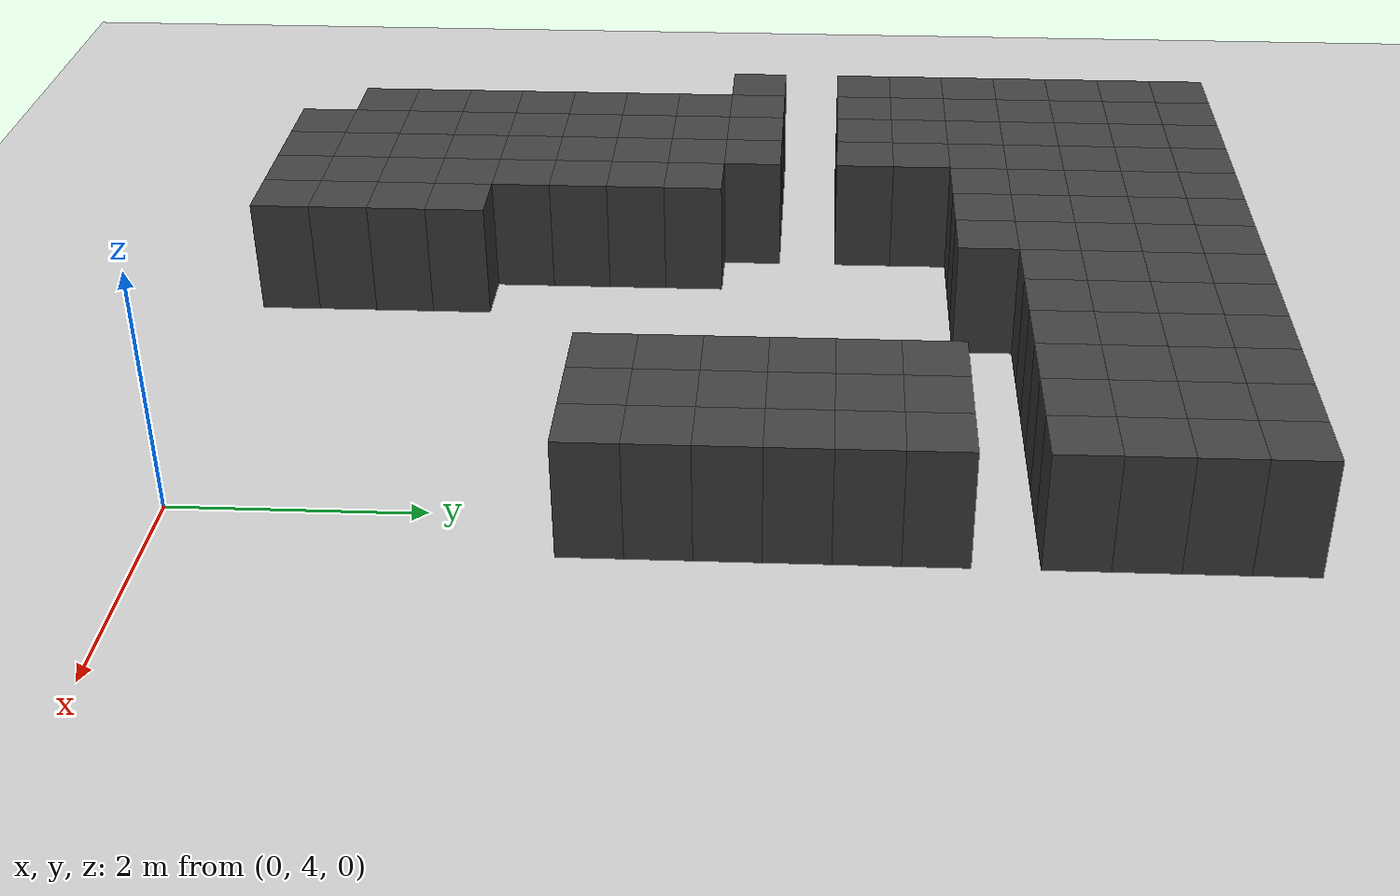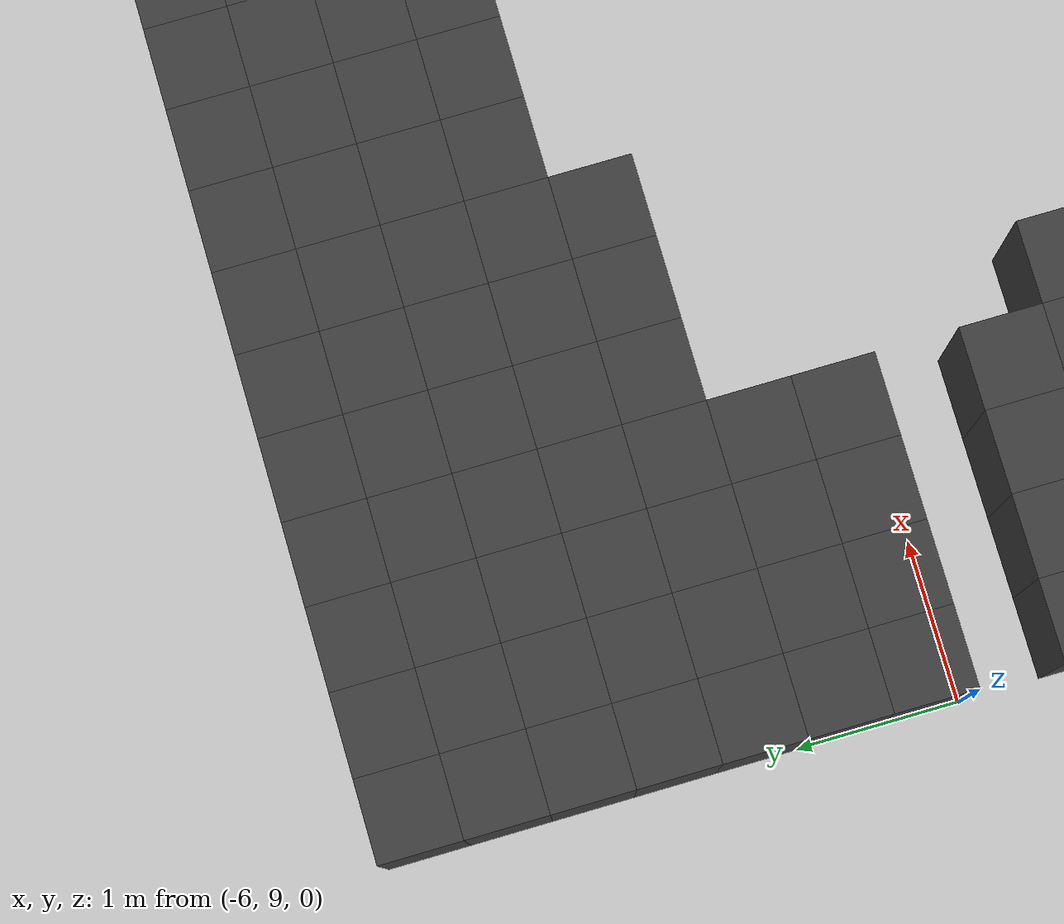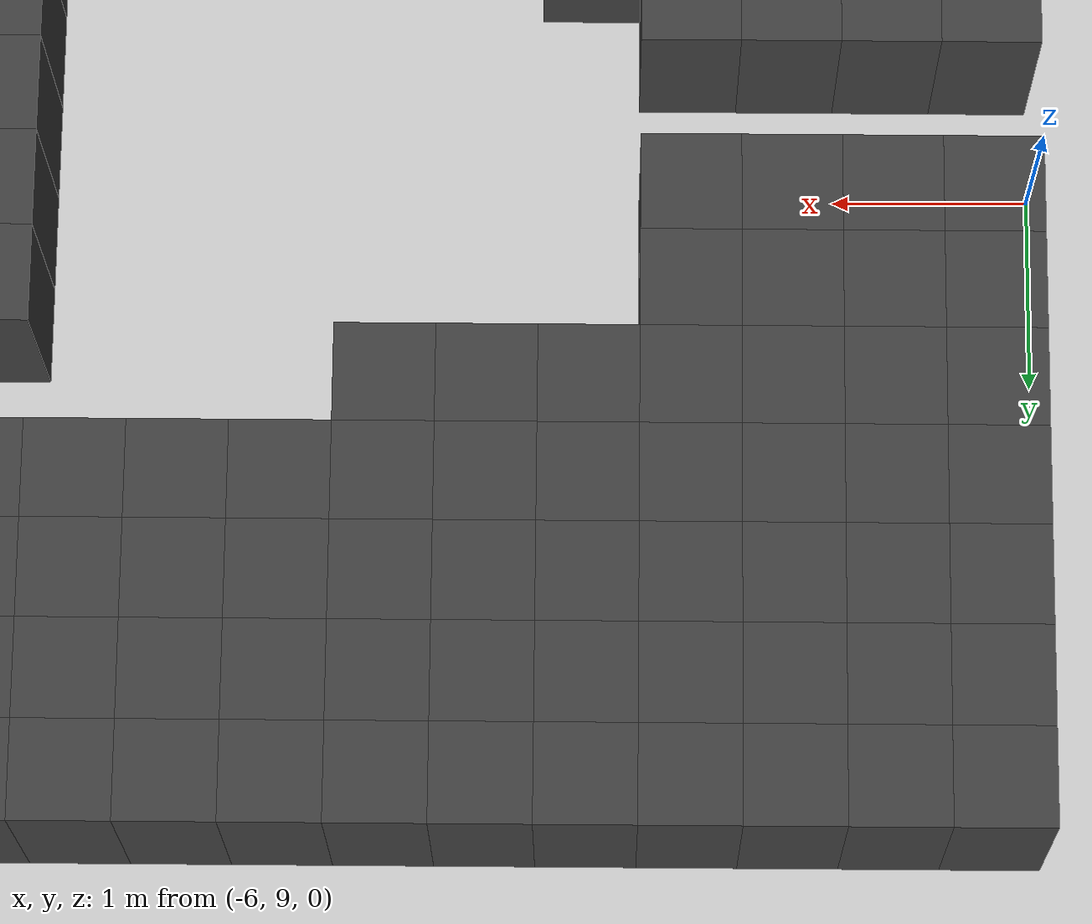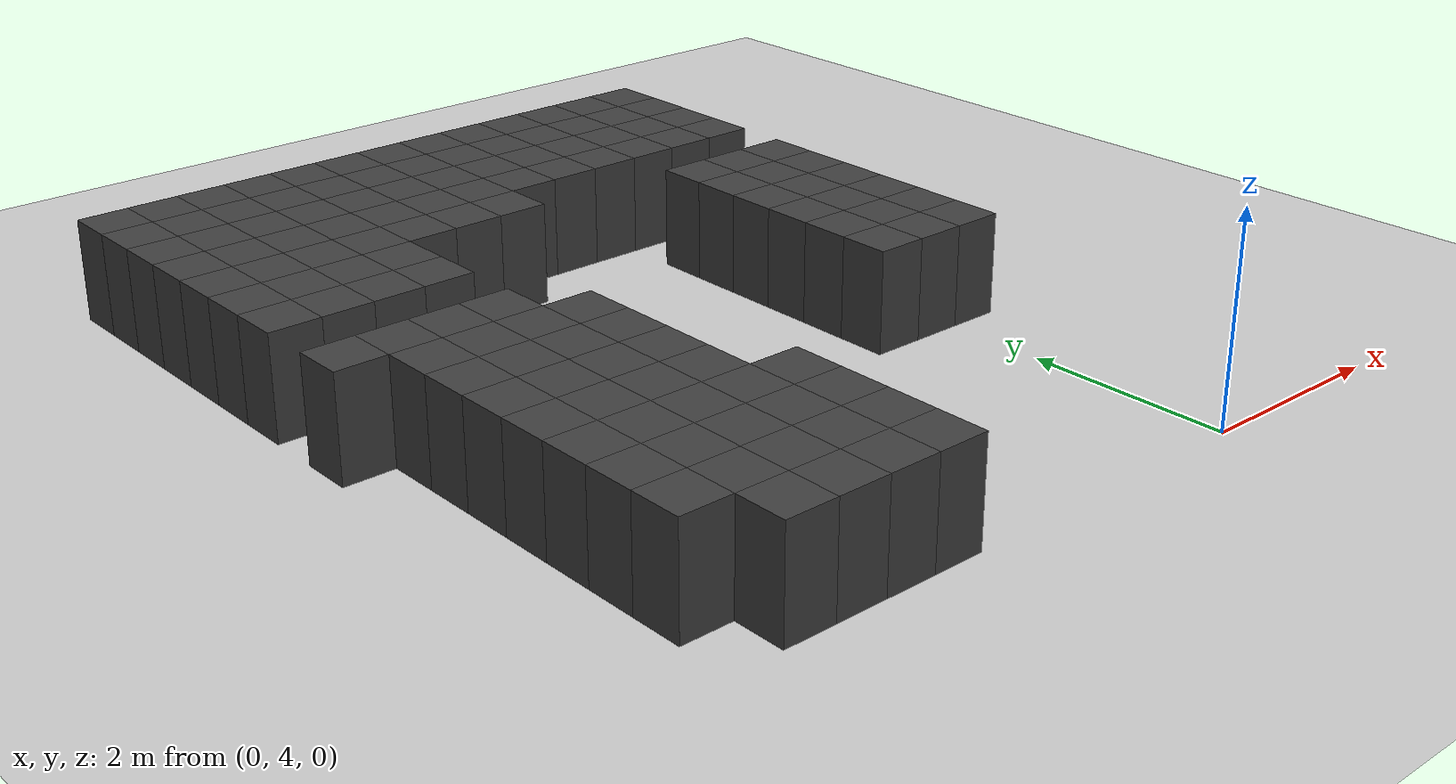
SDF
<sdf version="1.7">
 <world name="map_13820">
  <model name="ground_plane">
   <static>true</static>
   <link name="link">
    <collision name="collision">
     <geometry><plane><normal>0 0 1</normal><size>200 200</size></plane></geometry>
    </collision>
    <visual name="visual">
     <geometry><plane><normal>0 0 1</normal><size>200 200</size></plane></geometry>
     <material><ambient>0.8 0.8 0.8 1</ambient><diffuse>0.8 0.8 0.8 1</diffuse></material>
    </visual>
   </link>
  </model>
  <model name="maze_environment">
   <static>true</static>
   <link name="wall_13">
    <pose>-5.750 12.250 0.500 0 0 0</pose>
    <collision name="col"><geometry><box><size>0.5 0.5 1.0</size></box></geometry></collision>
    <visual name="vis">
     <geometry><box><size>0.5 0.5 1.0</size></box></geometry>
     <material><ambient>0.15 0.15 0.15 1</ambient><diffuse>0.25 0.25 0.25 1</diffuse></material>
    </visual>
   </link>
   <link name="wall_14">
    <pose>-5.250 12.250 0.500 0 0 0</pose>
    <collision name="col"><geometry><box><size>0.5 0.5 1.0</size></box></geometry></collision>
    <visual name="vis">
     <geometry><box><size>0.5 0.5 1.0</size></box></geometry>
     <material><ambient>0.15 0.15 0.15 1</ambient><diffuse>0.25 0.25 0.25 1</diffuse></material>
    </visual>
   </link>
   <link name="wall_15">
    <pose>-4.750 12.250 0.500 0 0 0</pose>
    <collision name="col"><geometry><box><size>0.5 0.5 1.0</size></box></geometry></collision>
    <visual name="vis">
     <geometry><box><size>0.5 0.5 1.0</size></box></geometry>
     <material><ambient>0.15 0.15 0.15 1</ambient><diffuse>0.25 0.25 0.25 1</diffuse></material>
    </visual>
   </link>
   <link name="wall_16">
    <pose>-4.250 12.250 0.500 0 0 0</pose>
    <collision name="col"><geometry><box><size>0.5 0.5 1.0</size></box></geometry></collision>
    <visual name="vis">
     <geometry><box><size>0.5 0.5 1.0</size></box></geometry>
     <material><ambient>0.15 0.15 0.15 1</ambient><diffuse>0.25 0.25 0.25 1</diffuse></material>
    </visual>
   </link>
   <link name="wall_17">
    <pose>-3.750 12.250 0.500 0 0 0</pose>
    <collision name="col"><geometry><box><size>0.5 0.5 1.0</size></box></geometry></collision>
    <visual name="vis">
     <geometry><box><size>0.5 0.5 1.0</size></box></geometry>
     <material><ambient>0.15 0.15 0.15 1</ambient><diffuse>0.25 0.25 0.25 1</diffuse></material>
    </visual>
   </link>
   <link name="wall_18">
    <pose>-3.250 12.250 0.500 0 0 0</pose>
    <collision name="col"><geometry><box><size>0.5 0.5 1.0</size></box></geometry></collision>
    <visual name="vis">
     <geometry><box><size>0.5 0.5 1.0</size></box></geometry>
     <material><ambient>0.15 0.15 0.15 1</ambient><diffuse>0.25 0.25 0.25 1</diffuse></material>
    </visual>
   </link>
   <link name="wall_19">
    <pose>-2.750 12.250 0.500 0 0 0</pose>
    <collision name="col"><geometry><box><size>0.5 0.5 1.0</size></box></geometry></collision>
    <visual name="vis">
     <geometry><box><size>0.5 0.5 1.0</size></box></geometry>
     <material><ambient>0.15 0.15 0.15 1</ambient><diffuse>0.25 0.25 0.25 1</diffuse></material>
    </visual>
   </link>
   <link name="wall_20">
    <pose>-2.250 12.250 0.500 0 0 0</pose>
    <collision name="col"><geometry><box><size>0.5 0.5 1.0</size></box></geometry></collision>
    <visual name="vis">
     <geometry><box><size>0.5 0.5 1.0</size></box></geometry>
     <material><ambient>0.15 0.15 0.15 1</ambient><diffuse>0.25 0.25 0.25 1</diffuse></material>
    </visual>
   </link>
   <link name="wall_21">
    <pose>-1.750 12.250 0.500 0 0 0</pose>
    <collision name="col"><geometry><box><size>0.5 0.5 1.0</size></box></geometry></collision>
    <visual name="vis">
     <geometry><box><size>0.5 0.5 1.0</size></box></geometry>
     <material><ambient>0.15 0.15 0.15 1</ambient><diffuse>0.25 0.25 0.25 1</diffuse></material>
    </visual>
   </link>
   <link name="wall_22">
    <pose>-1.250 12.250 0.500 0 0 0</pose>
    <collision name="col"><geometry><box><size>0.5 0.5 1.0</size></box></geometry></collision>
    <visual name="vis">
     <geometry><box><size>0.5 0.5 1.0</size></box></geometry>
     <material><ambient>0.15 0.15 0.15 1</ambient><diffuse>0.25 0.25 0.25 1</diffuse></material>
    </visual>
   </link>
   <link name="wall_23">
    <pose>-0.750 12.250 0.500 0 0 0</pose>
    <collision name="col"><geometry><box><size>0.5 0.5 1.0</size></box></geometry></collision>
    <visual name="vis">
     <geometry><box><size>0.5 0.5 1.0</size></box></geometry>
     <material><ambient>0.15 0.15 0.15 1</ambient><diffuse>0.25 0.25 0.25 1</diffuse></material>
    </visual>
   </link>
   <link name="wall_24">
    <pose>-0.250 12.250 0.500 0 0 0</pose>
    <collision name="col"><geometry><box><size>0.5 0.5 1.0</size></box></geometry></collision>
    <visual name="vis">
     <geometry><box><size>0.5 0.5 1.0</size></box></geometry>
     <material><ambient>0.15 0.15 0.15 1</ambient><diffuse>0.25 0.25 0.25 1</diffuse></material>
    </visual>
   </link>
   <link name="wall_25">
    <pose>0.250 12.250 0.500 0 0 0</pose>
    <collision name="col"><geometry><box><size>0.5 0.5 1.0</size></box></geometry></collision>
    <visual name="vis">
     <geometry><box><size>0.5 0.5 1.0</size></box></geometry>
     <material><ambient>0.15 0.15 0.15 1</ambient><diffuse>0.25 0.25 0.25 1</diffuse></material>
    </visual>
   </link>
   <link name="wall_60">
    <pose>-5.750 11.750 0.500 0 0 0</pose>
    <collision name="col"><geometry><box><size>0.5 0.5 1.0</size></box></geometry></collision>
    <visual name="vis">
     <geometry><box><size>0.5 0.5 1.0</size></box></geometry>
     <material><ambient>0.15 0.15 0.15 1</ambient><diffuse>0.25 0.25 0.25 1</diffuse></material>
    </visual>
   </link>
   <link name="wall_61">
    <pose>-5.250 11.750 0.500 0 0 0</pose>
    <collision name="col"><geometry><box><size>0.5 0.5 1.0</size></box></geometry></collision>
    <visual name="vis">
     <geometry><box><size>0.5 0.5 1.0</size></box></geometry>
     <material><ambient>0.15 0.15 0.15 1</ambient><diffuse>0.25 0.25 0.25 1</diffuse></material>
    </visual>
   </link>
   <link name="wall_62">
    <pose>-4.750 11.750 0.500 0 0 0</pose>
    <collision name="col"><geometry><box><size>0.5 0.5 1.0</size></box></geometry></collision>
    <visual name="vis">
     <geometry><box><size>0.5 0.5 1.0</size></box></geometry>
     <material><ambient>0.15 0.15 0.15 1</ambient><diffuse>0.25 0.25 0.25 1</diffuse></material>
    </visual>
   </link>
   <link name="wall_63">
    <pose>-4.250 11.750 0.500 0 0 0</pose>
    <collision name="col"><geometry><box><size>0.5 0.5 1.0</size></box></geometry></collision>
    <visual name="vis">
     <geometry><box><size>0.5 0.5 1.0</size></box></geometry>
     <material><ambient>0.15 0.15 0.15 1</ambient><diffuse>0.25 0.25 0.25 1</diffuse></material>
    </visual>
   </link>
   <link name="wall_64">
    <pose>-3.750 11.750 0.500 0 0 0</pose>
    <collision name="col"><geometry><box><size>0.5 0.5 1.0</size></box></geometry></collision>
    <visual name="vis">
     <geometry><box><size>0.5 0.5 1.0</size></box></geometry>
     <material><ambient>0.15 0.15 0.15 1</ambient><diffuse>0.25 0.25 0.25 1</diffuse></material>
    </visual>
   </link>
   <link name="wall_65">
    <pose>-3.250 11.750 0.500 0 0 0</pose>
    <collision name="col"><geometry><box><size>0.5 0.5 1.0</size></box></geometry></collision>
    <visual name="vis">
     <geometry><box><size>0.5 0.5 1.0</size></box></geometry>
     <material><ambient>0.15 0.15 0.15 1</ambient><diffuse>0.25 0.25 0.25 1</diffuse></material>
    </visual>
   </link>
   <link name="wall_66">
    <pose>-2.750 11.750 0.500 0 0 0</pose>
    <collision name="col"><geometry><box><size>0.5 0.5 1.0</size></box></geometry></collision>
    <visual name="vis">
     <geometry><box><size>0.5 0.5 1.0</size></box></geometry>
     <material><ambient>0.15 0.15 0.15 1</ambient><diffuse>0.25 0.25 0.25 1</diffuse></material>
    </visual>
   </link>
   <link name="wall_67">
    <pose>-2.250 11.750 0.500 0 0 0</pose>
    <collision name="col"><geometry><box><size>0.5 0.5 1.0</size></box></geometry></collision>
    <visual name="vis">
     <geometry><box><size>0.5 0.5 1.0</size></box></geometry>
     <material><ambient>0.15 0.15 0.15 1</ambient><diffuse>0.25 0.25 0.25 1</diffuse></material>
    </visual>
   </link>
   <link name="wall_68">
    <pose>-1.750 11.750 0.500 0 0 0</pose>
    <collision name="col"><geometry><box><size>0.5 0.5 1.0</size></box></geometry></collision>
    <visual name="vis">
     <geometry><box><size>0.5 0.5 1.0</size></box></geometry>
     <material><ambient>0.15 0.15 0.15 1</ambient><diffuse>0.25 0.25 0.25 1</diffuse></material>
    </visual>
   </link>
   <link name="wall_69">
    <pose>-1.250 11.750 0.500 0 0 0</pose>
    <collision name="col"><geometry><box><size>0.5 0.5 1.0</size></box></geometry></collision>
    <visual name="vis">
     <geometry><box><size>0.5 0.5 1.0</size></box></geometry>
     <material><ambient>0.15 0.15 0.15 1</ambient><diffuse>0.25 0.25 0.25 1</diffuse></material>
    </visual>
   </link>
   <link name="wall_70">
    <pose>-0.750 11.750 0.500 0 0 0</pose>
    <collision name="col"><geometry><box><size>0.5 0.5 1.0</size></box></geometry></collision>
    <visual name="vis">
     <geometry><box><size>0.5 0.5 1.0</size></box></geometry>
     <material><ambient>0.15 0.15 0.15 1</ambient><diffuse>0.25 0.25 0.25 1</diffuse></material>
    </visual>
   </link>
   <link name="wall_71">
    <pose>-0.250 11.750 0.500 0 0 0</pose>
    <collision name="col"><geometry><box><size>0.5 0.5 1.0</size></box></geometry></collision>
    <visual name="vis">
     <geometry><box><size>0.5 0.5 1.0</size></box></geometry>
     <material><ambient>0.15 0.15 0.15 1</ambient><diffuse>0.25 0.25 0.25 1</diffuse></material>
    </visual>
   </link>
   <link name="wall_72">
    <pose>0.250 11.750 0.500 0 0 0</pose>
    <collision name="col"><geometry><box><size>0.5 0.5 1.0</size></box></geometry></collision>
    <visual name="vis">
     <geometry><box><size>0.5 0.5 1.0</size></box></geometry>
     <material><ambient>0.15 0.15 0.15 1</ambient><diffuse>0.25 0.25 0.25 1</diffuse></material>
    </visual>
   </link>
   <link name="wall_101">
    <pose>-5.750 11.250 0.500 0 0 0</pose>
    <collision name="col"><geometry><box><size>0.5 0.5 1.0</size></box></geometry></collision>
    <visual name="vis">
     <geometry><box><size>0.5 0.5 1.0</size></box></geometry>
     <material><ambient>0.15 0.15 0.15 1</ambient><diffuse>0.25 0.25 0.25 1</diffuse></material>
    </visual>
   </link>
   <link name="wall_102">
    <pose>-5.250 11.250 0.500 0 0 0</pose>
    <collision name="col"><geometry><box><size>0.5 0.5 1.0</size></box></geometry></collision>
    <visual name="vis">
     <geometry><box><size>0.5 0.5 1.0</size></box></geometry>
     <material><ambient>0.15 0.15 0.15 1</ambient><diffuse>0.25 0.25 0.25 1</diffuse></material>
    </visual>
   </link>
   <link name="wall_103">
    <pose>-4.750 11.250 0.500 0 0 0</pose>
    <collision name="col"><geometry><box><size>0.5 0.5 1.0</size></box></geometry></collision>
    <visual name="vis">
     <geometry><box><size>0.5 0.5 1.0</size></box></geometry>
     <material><ambient>0.15 0.15 0.15 1</ambient><diffuse>0.25 0.25 0.25 1</diffuse></material>
    </visual>
   </link>
   <link name="wall_104">
    <pose>-4.250 11.250 0.500 0 0 0</pose>
    <collision name="col"><geometry><box><size>0.5 0.5 1.0</size></box></geometry></collision>
    <visual name="vis">
     <geometry><box><size>0.5 0.5 1.0</size></box></geometry>
     <material><ambient>0.15 0.15 0.15 1</ambient><diffuse>0.25 0.25 0.25 1</diffuse></material>
    </visual>
   </link>
   <link name="wall_105">
    <pose>-3.750 11.250 0.500 0 0 0</pose>
    <collision name="col"><geometry><box><size>0.5 0.5 1.0</size></box></geometry></collision>
    <visual name="vis">
     <geometry><box><size>0.5 0.5 1.0</size></box></geometry>
     <material><ambient>0.15 0.15 0.15 1</ambient><diffuse>0.25 0.25 0.25 1</diffuse></material>
    </visual>
   </link>
   <link name="wall_106">
    <pose>-3.250 11.250 0.500 0 0 0</pose>
    <collision name="col"><geometry><box><size>0.5 0.5 1.0</size></box></geometry></collision>
    <visual name="vis">
     <geometry><box><size>0.5 0.5 1.0</size></box></geometry>
     <material><ambient>0.15 0.15 0.15 1</ambient><diffuse>0.25 0.25 0.25 1</diffuse></material>
    </visual>
   </link>
   <link name="wall_107">
    <pose>-2.750 11.250 0.500 0 0 0</pose>
    <collision name="col"><geometry><box><size>0.5 0.5 1.0</size></box></geometry></collision>
    <visual name="vis">
     <geometry><box><size>0.5 0.5 1.0</size></box></geometry>
     <material><ambient>0.15 0.15 0.15 1</ambient><diffuse>0.25 0.25 0.25 1</diffuse></material>
    </visual>
   </link>
   <link name="wall_108">
    <pose>-2.250 11.250 0.500 0 0 0</pose>
    <collision name="col"><geometry><box><size>0.5 0.5 1.0</size></box></geometry></collision>
    <visual name="vis">
     <geometry><box><size>0.5 0.5 1.0</size></box></geometry>
     <material><ambient>0.15 0.15 0.15 1</ambient><diffuse>0.25 0.25 0.25 1</diffuse></material>
    </visual>
   </link>
   <link name="wall_109">
    <pose>-1.750 11.250 0.500 0 0 0</pose>
    <collision name="col"><geometry><box><size>0.5 0.5 1.0</size></box></geometry></collision>
    <visual name="vis">
     <geometry><box><size>0.5 0.5 1.0</size></box></geometry>
     <material><ambient>0.15 0.15 0.15 1</ambient><diffuse>0.25 0.25 0.25 1</diffuse></material>
    </visual>
   </link>
   <link name="wall_110">
    <pose>-1.250 11.250 0.500 0 0 0</pose>
    <collision name="col"><geometry><box><size>0.5 0.5 1.0</size></box></geometry></collision>
    <visual name="vis">
     <geometry><box><size>0.5 0.5 1.0</size></box></geometry>
     <material><ambient>0.15 0.15 0.15 1</ambient><diffuse>0.25 0.25 0.25 1</diffuse></material>
    </visual>
   </link>
   <link name="wall_111">
    <pose>-0.750 11.250 0.500 0 0 0</pose>
    <collision name="col"><geometry><box><size>0.5 0.5 1.0</size></box></geometry></collision>
    <visual name="vis">
     <geometry><box><size>0.5 0.5 1.0</size></box></geometry>
     <material><ambient>0.15 0.15 0.15 1</ambient><diffuse>0.25 0.25 0.25 1</diffuse></material>
    </visual>
   </link>
   <link name="wall_112">
    <pose>-0.250 11.250 0.500 0 0 0</pose>
    <collision name="col"><geometry><box><size>0.5 0.5 1.0</size></box></geometry></collision>
    <visual name="vis">
     <geometry><box><size>0.5 0.5 1.0</size></box></geometry>
     <material><ambient>0.15 0.15 0.15 1</ambient><diffuse>0.25 0.25 0.25 1</diffuse></material>
    </visual>
   </link>
   <link name="wall_113">
    <pose>0.250 11.250 0.500 0 0 0</pose>
    <collision name="col"><geometry><box><size>0.5 0.5 1.0</size></box></geometry></collision>
    <visual name="vis">
     <geometry><box><size>0.5 0.5 1.0</size></box></geometry>
     <material><ambient>0.15 0.15 0.15 1</ambient><diffuse>0.25 0.25 0.25 1</diffuse></material>
    </visual>
   </link>
   <link name="wall_128">
    <pose>-5.750 10.750 0.500 0 0 0</pose>
    <collision name="col"><geometry><box><size>0.5 0.5 1.0</size></box></geometry></collision>
    <visual name="vis">
     <geometry><box><size>0.5 0.5 1.0</size></box></geometry>
     <material><ambient>0.15 0.15 0.15 1</ambient><diffuse>0.25 0.25 0.25 1</diffuse></material>
    </visual>
   </link>
   <link name="wall_129">
    <pose>-5.250 10.750 0.500 0 0 0</pose>
    <collision name="col"><geometry><box><size>0.5 0.5 1.0</size></box></geometry></collision>
    <visual name="vis">
     <geometry><box><size>0.5 0.5 1.0</size></box></geometry>
     <material><ambient>0.15 0.15 0.15 1</ambient><diffuse>0.25 0.25 0.25 1</diffuse></material>
    </visual>
   </link>
   <link name="wall_130">
    <pose>-4.750 10.750 0.500 0 0 0</pose>
    <collision name="col"><geometry><box><size>0.5 0.5 1.0</size></box></geometry></collision>
    <visual name="vis">
     <geometry><box><size>0.5 0.5 1.0</size></box></geometry>
     <material><ambient>0.15 0.15 0.15 1</ambient><diffuse>0.25 0.25 0.25 1</diffuse></material>
    </visual>
   </link>
   <link name="wall_131">
    <pose>-4.250 10.750 0.500 0 0 0</pose>
    <collision name="col"><geometry><box><size>0.5 0.5 1.0</size></box></geometry></collision>
    <visual name="vis">
     <geometry><box><size>0.5 0.5 1.0</size></box></geometry>
     <material><ambient>0.15 0.15 0.15 1</ambient><diffuse>0.25 0.25 0.25 1</diffuse></material>
    </visual>
   </link>
   <link name="wall_132">
    <pose>-3.750 10.750 0.500 0 0 0</pose>
    <collision name="col"><geometry><box><size>0.5 0.5 1.0</size></box></geometry></collision>
    <visual name="vis">
     <geometry><box><size>0.5 0.5 1.0</size></box></geometry>
     <material><ambient>0.15 0.15 0.15 1</ambient><diffuse>0.25 0.25 0.25 1</diffuse></material>
    </visual>
   </link>
   <link name="wall_133">
    <pose>-3.250 10.750 0.500 0 0 0</pose>
    <collision name="col"><geometry><box><size>0.5 0.5 1.0</size></box></geometry></collision>
    <visual name="vis">
     <geometry><box><size>0.5 0.5 1.0</size></box></geometry>
     <material><ambient>0.15 0.15 0.15 1</ambient><diffuse>0.25 0.25 0.25 1</diffuse></material>
    </visual>
   </link>
   <link name="wall_134">
    <pose>-2.750 10.750 0.500 0 0 0</pose>
    <collision name="col"><geometry><box><size>0.5 0.5 1.0</size></box></geometry></collision>
    <visual name="vis">
     <geometry><box><size>0.5 0.5 1.0</size></box></geometry>
     <material><ambient>0.15 0.15 0.15 1</ambient><diffuse>0.25 0.25 0.25 1</diffuse></material>
    </visual>
   </link>
   <link name="wall_135">
    <pose>-2.250 10.750 0.500 0 0 0</pose>
    <collision name="col"><geometry><box><size>0.5 0.5 1.0</size></box></geometry></collision>
    <visual name="vis">
     <geometry><box><size>0.5 0.5 1.0</size></box></geometry>
     <material><ambient>0.15 0.15 0.15 1</ambient><diffuse>0.25 0.25 0.25 1</diffuse></material>
    </visual>
   </link>
   <link name="wall_136">
    <pose>-1.750 10.750 0.500 0 0 0</pose>
    <collision name="col"><geometry><box><size>0.5 0.5 1.0</size></box></geometry></collision>
    <visual name="vis">
     <geometry><box><size>0.5 0.5 1.0</size></box></geometry>
     <material><ambient>0.15 0.15 0.15 1</ambient><diffuse>0.25 0.25 0.25 1</diffuse></material>
    </visual>
   </link>
   <link name="wall_137">
    <pose>-1.250 10.750 0.500 0 0 0</pose>
    <collision name="col"><geometry><box><size>0.5 0.5 1.0</size></box></geometry></collision>
    <visual name="vis">
     <geometry><box><size>0.5 0.5 1.0</size></box></geometry>
     <material><ambient>0.15 0.15 0.15 1</ambient><diffuse>0.25 0.25 0.25 1</diffuse></material>
    </visual>
   </link>
   <link name="wall_138">
    <pose>-0.750 10.750 0.500 0 0 0</pose>
    <collision name="col"><geometry><box><size>0.5 0.5 1.0</size></box></geometry></collision>
    <visual name="vis">
     <geometry><box><size>0.5 0.5 1.0</size></box></geometry>
     <material><ambient>0.15 0.15 0.15 1</ambient><diffuse>0.25 0.25 0.25 1</diffuse></material>
    </visual>
   </link>
   <link name="wall_139">
    <pose>-0.250 10.750 0.500 0 0 0</pose>
    <collision name="col"><geometry><box><size>0.5 0.5 1.0</size></box></geometry></collision>
    <visual name="vis">
     <geometry><box><size>0.5 0.5 1.0</size></box></geometry>
     <material><ambient>0.15 0.15 0.15 1</ambient><diffuse>0.25 0.25 0.25 1</diffuse></material>
    </visual>
   </link>
   <link name="wall_140">
    <pose>0.250 10.750 0.500 0 0 0</pose>
    <collision name="col"><geometry><box><size>0.5 0.5 1.0</size></box></geometry></collision>
    <visual name="vis">
     <geometry><box><size>0.5 0.5 1.0</size></box></geometry>
     <material><ambient>0.15 0.15 0.15 1</ambient><diffuse>0.25 0.25 0.25 1</diffuse></material>
    </visual>
   </link>
   <link name="wall_156">
    <pose>-5.750 10.250 0.500 0 0 0</pose>
    <collision name="col"><geometry><box><size>0.5 0.5 1.0</size></box></geometry></collision>
    <visual name="vis">
     <geometry><box><size>0.5 0.5 1.0</size></box></geometry>
     <material><ambient>0.15 0.15 0.15 1</ambient><diffuse>0.25 0.25 0.25 1</diffuse></material>
    </visual>
   </link>
   <link name="wall_157">
    <pose>-5.250 10.250 0.500 0 0 0</pose>
    <collision name="col"><geometry><box><size>0.5 0.5 1.0</size></box></geometry></collision>
    <visual name="vis">
     <geometry><box><size>0.5 0.5 1.0</size></box></geometry>
     <material><ambient>0.15 0.15 0.15 1</ambient><diffuse>0.25 0.25 0.25 1</diffuse></material>
    </visual>
   </link>
   <link name="wall_158">
    <pose>-4.750 10.250 0.500 0 0 0</pose>
    <collision name="col"><geometry><box><size>0.5 0.5 1.0</size></box></geometry></collision>
    <visual name="vis">
     <geometry><box><size>0.5 0.5 1.0</size></box></geometry>
     <material><ambient>0.15 0.15 0.15 1</ambient><diffuse>0.25 0.25 0.25 1</diffuse></material>
    </visual>
   </link>
   <link name="wall_159">
    <pose>-4.250 10.250 0.500 0 0 0</pose>
    <collision name="col"><geometry><box><size>0.5 0.5 1.0</size></box></geometry></collision>
    <visual name="vis">
     <geometry><box><size>0.5 0.5 1.0</size></box></geometry>
     <material><ambient>0.15 0.15 0.15 1</ambient><diffuse>0.25 0.25 0.25 1</diffuse></material>
    </visual>
   </link>
   <link name="wall_160">
    <pose>-3.750 10.250 0.500 0 0 0</pose>
    <collision name="col"><geometry><box><size>0.5 0.5 1.0</size></box></geometry></collision>
    <visual name="vis">
     <geometry><box><size>0.5 0.5 1.0</size></box></geometry>
     <material><ambient>0.15 0.15 0.15 1</ambient><diffuse>0.25 0.25 0.25 1</diffuse></material>
    </visual>
   </link>
   <link name="wall_161">
    <pose>-3.250 10.250 0.500 0 0 0</pose>
    <collision name="col"><geometry><box><size>0.5 0.5 1.0</size></box></geometry></collision>
    <visual name="vis">
     <geometry><box><size>0.5 0.5 1.0</size></box></geometry>
     <material><ambient>0.15 0.15 0.15 1</ambient><diffuse>0.25 0.25 0.25 1</diffuse></material>
    </visual>
   </link>
   <link name="wall_162">
    <pose>-2.750 10.250 0.500 0 0 0</pose>
    <collision name="col"><geometry><box><size>0.5 0.5 1.0</size></box></geometry></collision>
    <visual name="vis">
     <geometry><box><size>0.5 0.5 1.0</size></box></geometry>
     <material><ambient>0.15 0.15 0.15 1</ambient><diffuse>0.25 0.25 0.25 1</diffuse></material>
    </visual>
   </link>
   <link name="wall_175">
    <pose>-5.750 9.750 0.500 0 0 0</pose>
    <collision name="col"><geometry><box><size>0.5 0.5 1.0</size></box></geometry></collision>
    <visual name="vis">
     <geometry><box><size>0.5 0.5 1.0</size></box></geometry>
     <material><ambient>0.15 0.15 0.15 1</ambient><diffuse>0.25 0.25 0.25 1</diffuse></material>
    </visual>
   </link>
   <link name="wall_176">
    <pose>-5.250 9.750 0.500 0 0 0</pose>
    <collision name="col"><geometry><box><size>0.5 0.5 1.0</size></box></geometry></collision>
    <visual name="vis">
     <geometry><box><size>0.5 0.5 1.0</size></box></geometry>
     <material><ambient>0.15 0.15 0.15 1</ambient><diffuse>0.25 0.25 0.25 1</diffuse></material>
    </visual>
   </link>
   <link name="wall_177">
    <pose>-4.750 9.750 0.500 0 0 0</pose>
    <collision name="col"><geometry><box><size>0.5 0.5 1.0</size></box></geometry></collision>
    <visual name="vis">
     <geometry><box><size>0.5 0.5 1.0</size></box></geometry>
     <material><ambient>0.15 0.15 0.15 1</ambient><diffuse>0.25 0.25 0.25 1</diffuse></material>
    </visual>
   </link>
   <link name="wall_178">
    <pose>-4.250 9.750 0.500 0 0 0</pose>
    <collision name="col"><geometry><box><size>0.5 0.5 1.0</size></box></geometry></collision>
    <visual name="vis">
     <geometry><box><size>0.5 0.5 1.0</size></box></geometry>
     <material><ambient>0.15 0.15 0.15 1</ambient><diffuse>0.25 0.25 0.25 1</diffuse></material>
    </visual>
   </link>
   <link name="wall_179">
    <pose>-0.750 9.750 0.500 0 0 0</pose>
    <collision name="col"><geometry><box><size>0.5 0.5 1.0</size></box></geometry></collision>
    <visual name="vis">
     <geometry><box><size>0.5 0.5 1.0</size></box></geometry>
     <material><ambient>0.15 0.15 0.15 1</ambient><diffuse>0.25 0.25 0.25 1</diffuse></material>
    </visual>
   </link>
   <link name="wall_180">
    <pose>-0.250 9.750 0.500 0 0 0</pose>
    <collision name="col"><geometry><box><size>0.5 0.5 1.0</size></box></geometry></collision>
    <visual name="vis">
     <geometry><box><size>0.5 0.5 1.0</size></box></geometry>
     <material><ambient>0.15 0.15 0.15 1</ambient><diffuse>0.25 0.25 0.25 1</diffuse></material>
    </visual>
   </link>
   <link name="wall_181">
    <pose>0.250 9.750 0.500 0 0 0</pose>
    <collision name="col"><geometry><box><size>0.5 0.5 1.0</size></box></geometry></collision>
    <visual name="vis">
     <geometry><box><size>0.5 0.5 1.0</size></box></geometry>
     <material><ambient>0.15 0.15 0.15 1</ambient><diffuse>0.25 0.25 0.25 1</diffuse></material>
    </visual>
   </link>
   <link name="wall_198">
    <pose>-5.750 9.250 0.500 0 0 0</pose>
    <collision name="col"><geometry><box><size>0.5 0.5 1.0</size></box></geometry></collision>
    <visual name="vis">
     <geometry><box><size>0.5 0.5 1.0</size></box></geometry>
     <material><ambient>0.15 0.15 0.15 1</ambient><diffuse>0.25 0.25 0.25 1</diffuse></material>
    </visual>
   </link>
   <link name="wall_199">
    <pose>-5.250 9.250 0.500 0 0 0</pose>
    <collision name="col"><geometry><box><size>0.5 0.5 1.0</size></box></geometry></collision>
    <visual name="vis">
     <geometry><box><size>0.5 0.5 1.0</size></box></geometry>
     <material><ambient>0.15 0.15 0.15 1</ambient><diffuse>0.25 0.25 0.25 1</diffuse></material>
    </visual>
   </link>
   <link name="wall_200">
    <pose>-4.750 9.250 0.500 0 0 0</pose>
    <collision name="col"><geometry><box><size>0.5 0.5 1.0</size></box></geometry></collision>
    <visual name="vis">
     <geometry><box><size>0.5 0.5 1.0</size></box></geometry>
     <material><ambient>0.15 0.15 0.15 1</ambient><diffuse>0.25 0.25 0.25 1</diffuse></material>
    </visual>
   </link>
   <link name="wall_201">
    <pose>-4.250 9.250 0.500 0 0 0</pose>
    <collision name="col"><geometry><box><size>0.5 0.5 1.0</size></box></geometry></collision>
    <visual name="vis">
     <geometry><box><size>0.5 0.5 1.0</size></box></geometry>
     <material><ambient>0.15 0.15 0.15 1</ambient><diffuse>0.25 0.25 0.25 1</diffuse></material>
    </visual>
   </link>
   <link name="wall_202">
    <pose>-0.750 9.250 0.500 0 0 0</pose>
    <collision name="col"><geometry><box><size>0.5 0.5 1.0</size></box></geometry></collision>
    <visual name="vis">
     <geometry><box><size>0.5 0.5 1.0</size></box></geometry>
     <material><ambient>0.15 0.15 0.15 1</ambient><diffuse>0.25 0.25 0.25 1</diffuse></material>
    </visual>
   </link>
   <link name="wall_203">
    <pose>-0.250 9.250 0.500 0 0 0</pose>
    <collision name="col"><geometry><box><size>0.5 0.5 1.0</size></box></geometry></collision>
    <visual name="vis">
     <geometry><box><size>0.5 0.5 1.0</size></box></geometry>
     <material><ambient>0.15 0.15 0.15 1</ambient><diffuse>0.25 0.25 0.25 1</diffuse></material>
    </visual>
   </link>
   <link name="wall_204">
    <pose>0.250 9.250 0.500 0 0 0</pose>
    <collision name="col"><geometry><box><size>0.5 0.5 1.0</size></box></geometry></collision>
    <visual name="vis">
     <geometry><box><size>0.5 0.5 1.0</size></box></geometry>
     <material><ambient>0.15 0.15 0.15 1</ambient><diffuse>0.25 0.25 0.25 1</diffuse></material>
    </visual>
   </link>
   <link name="wall_218">
    <pose>-0.750 8.750 0.500 0 0 0</pose>
    <collision name="col"><geometry><box><size>0.5 0.5 1.0</size></box></geometry></collision>
    <visual name="vis">
     <geometry><box><size>0.5 0.5 1.0</size></box></geometry>
     <material><ambient>0.15 0.15 0.15 1</ambient><diffuse>0.25 0.25 0.25 1</diffuse></material>
    </visual>
   </link>
   <link name="wall_219">
    <pose>-0.250 8.750 0.500 0 0 0</pose>
    <collision name="col"><geometry><box><size>0.5 0.5 1.0</size></box></geometry></collision>
    <visual name="vis">
     <geometry><box><size>0.5 0.5 1.0</size></box></geometry>
     <material><ambient>0.15 0.15 0.15 1</ambient><diffuse>0.25 0.25 0.25 1</diffuse></material>
    </visual>
   </link>
   <link name="wall_220">
    <pose>0.250 8.750 0.500 0 0 0</pose>
    <collision name="col"><geometry><box><size>0.5 0.5 1.0</size></box></geometry></collision>
    <visual name="vis">
     <geometry><box><size>0.5 0.5 1.0</size></box></geometry>
     <material><ambient>0.15 0.15 0.15 1</ambient><diffuse>0.25 0.25 0.25 1</diffuse></material>
    </visual>
   </link>
   <link name="wall_250">
    <pose>-5.750 8.250 0.500 0 0 0</pose>
    <collision name="col"><geometry><box><size>0.5 0.5 1.0</size></box></geometry></collision>
    <visual name="vis">
     <geometry><box><size>0.5 0.5 1.0</size></box></geometry>
     <material><ambient>0.15 0.15 0.15 1</ambient><diffuse>0.25 0.25 0.25 1</diffuse></material>
    </visual>
   </link>
   <link name="wall_251">
    <pose>-5.250 8.250 0.500 0 0 0</pose>
    <collision name="col"><geometry><box><size>0.5 0.5 1.0</size></box></geometry></collision>
    <visual name="vis">
     <geometry><box><size>0.5 0.5 1.0</size></box></geometry>
     <material><ambient>0.15 0.15 0.15 1</ambient><diffuse>0.25 0.25 0.25 1</diffuse></material>
    </visual>
   </link>
   <link name="wall_252">
    <pose>-4.750 8.250 0.500 0 0 0</pose>
    <collision name="col"><geometry><box><size>0.5 0.5 1.0</size></box></geometry></collision>
    <visual name="vis">
     <geometry><box><size>0.5 0.5 1.0</size></box></geometry>
     <material><ambient>0.15 0.15 0.15 1</ambient><diffuse>0.25 0.25 0.25 1</diffuse></material>
    </visual>
   </link>
   <link name="wall_253">
    <pose>-4.250 8.250 0.500 0 0 0</pose>
    <collision name="col"><geometry><box><size>0.5 0.5 1.0</size></box></geometry></collision>
    <visual name="vis">
     <geometry><box><size>0.5 0.5 1.0</size></box></geometry>
     <material><ambient>0.15 0.15 0.15 1</ambient><diffuse>0.25 0.25 0.25 1</diffuse></material>
    </visual>
   </link>
   <link name="wall_254">
    <pose>-0.750 8.250 0.500 0 0 0</pose>
    <collision name="col"><geometry><box><size>0.5 0.5 1.0</size></box></geometry></collision>
    <visual name="vis">
     <geometry><box><size>0.5 0.5 1.0</size></box></geometry>
     <material><ambient>0.15 0.15 0.15 1</ambient><diffuse>0.25 0.25 0.25 1</diffuse></material>
    </visual>
   </link>
   <link name="wall_255">
    <pose>-0.250 8.250 0.500 0 0 0</pose>
    <collision name="col"><geometry><box><size>0.5 0.5 1.0</size></box></geometry></collision>
    <visual name="vis">
     <geometry><box><size>0.5 0.5 1.0</size></box></geometry>
     <material><ambient>0.15 0.15 0.15 1</ambient><diffuse>0.25 0.25 0.25 1</diffuse></material>
    </visual>
   </link>
   <link name="wall_256">
    <pose>0.250 8.250 0.500 0 0 0</pose>
    <collision name="col"><geometry><box><size>0.5 0.5 1.0</size></box></geometry></collision>
    <visual name="vis">
     <geometry><box><size>0.5 0.5 1.0</size></box></geometry>
     <material><ambient>0.15 0.15 0.15 1</ambient><diffuse>0.25 0.25 0.25 1</diffuse></material>
    </visual>
   </link>
   <link name="wall_293">
    <pose>-5.250 7.750 0.500 0 0 0</pose>
    <collision name="col"><geometry><box><size>0.5 0.5 1.0</size></box></geometry></collision>
    <visual name="vis">
     <geometry><box><size>0.5 0.5 1.0</size></box></geometry>
     <material><ambient>0.15 0.15 0.15 1</ambient><diffuse>0.25 0.25 0.25 1</diffuse></material>
    </visual>
   </link>
   <link name="wall_294">
    <pose>-4.750 7.750 0.500 0 0 0</pose>
    <collision name="col"><geometry><box><size>0.5 0.5 1.0</size></box></geometry></collision>
    <visual name="vis">
     <geometry><box><size>0.5 0.5 1.0</size></box></geometry>
     <material><ambient>0.15 0.15 0.15 1</ambient><diffuse>0.25 0.25 0.25 1</diffuse></material>
    </visual>
   </link>
   <link name="wall_295">
    <pose>-4.250 7.750 0.500 0 0 0</pose>
    <collision name="col"><geometry><box><size>0.5 0.5 1.0</size></box></geometry></collision>
    <visual name="vis">
     <geometry><box><size>0.5 0.5 1.0</size></box></geometry>
     <material><ambient>0.15 0.15 0.15 1</ambient><diffuse>0.25 0.25 0.25 1</diffuse></material>
    </visual>
   </link>
   <link name="wall_296">
    <pose>-3.750 7.750 0.500 0 0 0</pose>
    <collision name="col"><geometry><box><size>0.5 0.5 1.0</size></box></geometry></collision>
    <visual name="vis">
     <geometry><box><size>0.5 0.5 1.0</size></box></geometry>
     <material><ambient>0.15 0.15 0.15 1</ambient><diffuse>0.25 0.25 0.25 1</diffuse></material>
    </visual>
   </link>
   <link name="wall_297">
    <pose>-0.750 7.750 0.500 0 0 0</pose>
    <collision name="col"><geometry><box><size>0.5 0.5 1.0</size></box></geometry></collision>
    <visual name="vis">
     <geometry><box><size>0.5 0.5 1.0</size></box></geometry>
     <material><ambient>0.15 0.15 0.15 1</ambient><diffuse>0.25 0.25 0.25 1</diffuse></material>
    </visual>
   </link>
   <link name="wall_298">
    <pose>-0.250 7.750 0.500 0 0 0</pose>
    <collision name="col"><geometry><box><size>0.5 0.5 1.0</size></box></geometry></collision>
    <visual name="vis">
     <geometry><box><size>0.5 0.5 1.0</size></box></geometry>
     <material><ambient>0.15 0.15 0.15 1</ambient><diffuse>0.25 0.25 0.25 1</diffuse></material>
    </visual>
   </link>
   <link name="wall_299">
    <pose>0.250 7.750 0.500 0 0 0</pose>
    <collision name="col"><geometry><box><size>0.5 0.5 1.0</size></box></geometry></collision>
    <visual name="vis">
     <geometry><box><size>0.5 0.5 1.0</size></box></geometry>
     <material><ambient>0.15 0.15 0.15 1</ambient><diffuse>0.25 0.25 0.25 1</diffuse></material>
    </visual>
   </link>
   <link name="wall_328">
    <pose>-5.250 7.250 0.500 0 0 0</pose>
    <collision name="col"><geometry><box><size>0.5 0.5 1.0</size></box></geometry></collision>
    <visual name="vis">
     <geometry><box><size>0.5 0.5 1.0</size></box></geometry>
     <material><ambient>0.15 0.15 0.15 1</ambient><diffuse>0.25 0.25 0.25 1</diffuse></material>
    </visual>
   </link>
   <link name="wall_329">
    <pose>-4.750 7.250 0.500 0 0 0</pose>
    <collision name="col"><geometry><box><size>0.5 0.5 1.0</size></box></geometry></collision>
    <visual name="vis">
     <geometry><box><size>0.5 0.5 1.0</size></box></geometry>
     <material><ambient>0.15 0.15 0.15 1</ambient><diffuse>0.25 0.25 0.25 1</diffuse></material>
    </visual>
   </link>
   <link name="wall_330">
    <pose>-4.250 7.250 0.500 0 0 0</pose>
    <collision name="col"><geometry><box><size>0.5 0.5 1.0</size></box></geometry></collision>
    <visual name="vis">
     <geometry><box><size>0.5 0.5 1.0</size></box></geometry>
     <material><ambient>0.15 0.15 0.15 1</ambient><diffuse>0.25 0.25 0.25 1</diffuse></material>
    </visual>
   </link>
   <link name="wall_331">
    <pose>-3.750 7.250 0.500 0 0 0</pose>
    <collision name="col"><geometry><box><size>0.5 0.5 1.0</size></box></geometry></collision>
    <visual name="vis">
     <geometry><box><size>0.5 0.5 1.0</size></box></geometry>
     <material><ambient>0.15 0.15 0.15 1</ambient><diffuse>0.25 0.25 0.25 1</diffuse></material>
    </visual>
   </link>
   <link name="wall_332">
    <pose>-0.750 7.250 0.500 0 0 0</pose>
    <collision name="col"><geometry><box><size>0.5 0.5 1.0</size></box></geometry></collision>
    <visual name="vis">
     <geometry><box><size>0.5 0.5 1.0</size></box></geometry>
     <material><ambient>0.15 0.15 0.15 1</ambient><diffuse>0.25 0.25 0.25 1</diffuse></material>
    </visual>
   </link>
   <link name="wall_333">
    <pose>-0.250 7.250 0.500 0 0 0</pose>
    <collision name="col"><geometry><box><size>0.5 0.5 1.0</size></box></geometry></collision>
    <visual name="vis">
     <geometry><box><size>0.5 0.5 1.0</size></box></geometry>
     <material><ambient>0.15 0.15 0.15 1</ambient><diffuse>0.25 0.25 0.25 1</diffuse></material>
    </visual>
   </link>
   <link name="wall_334">
    <pose>0.250 7.250 0.500 0 0 0</pose>
    <collision name="col"><geometry><box><size>0.5 0.5 1.0</size></box></geometry></collision>
    <visual name="vis">
     <geometry><box><size>0.5 0.5 1.0</size></box></geometry>
     <material><ambient>0.15 0.15 0.15 1</ambient><diffuse>0.25 0.25 0.25 1</diffuse></material>
    </visual>
   </link>
   <link name="wall_363">
    <pose>-5.250 6.750 0.500 0 0 0</pose>
    <collision name="col"><geometry><box><size>0.5 0.5 1.0</size></box></geometry></collision>
    <visual name="vis">
     <geometry><box><size>0.5 0.5 1.0</size></box></geometry>
     <material><ambient>0.15 0.15 0.15 1</ambient><diffuse>0.25 0.25 0.25 1</diffuse></material>
    </visual>
   </link>
   <link name="wall_364">
    <pose>-4.750 6.750 0.500 0 0 0</pose>
    <collision name="col"><geometry><box><size>0.5 0.5 1.0</size></box></geometry></collision>
    <visual name="vis">
     <geometry><box><size>0.5 0.5 1.0</size></box></geometry>
     <material><ambient>0.15 0.15 0.15 1</ambient><diffuse>0.25 0.25 0.25 1</diffuse></material>
    </visual>
   </link>
   <link name="wall_365">
    <pose>-4.250 6.750 0.500 0 0 0</pose>
    <collision name="col"><geometry><box><size>0.5 0.5 1.0</size></box></geometry></collision>
    <visual name="vis">
     <geometry><box><size>0.5 0.5 1.0</size></box></geometry>
     <material><ambient>0.15 0.15 0.15 1</ambient><diffuse>0.25 0.25 0.25 1</diffuse></material>
    </visual>
   </link>
   <link name="wall_366">
    <pose>-3.750 6.750 0.500 0 0 0</pose>
    <collision name="col"><geometry><box><size>0.5 0.5 1.0</size></box></geometry></collision>
    <visual name="vis">
     <geometry><box><size>0.5 0.5 1.0</size></box></geometry>
     <material><ambient>0.15 0.15 0.15 1</ambient><diffuse>0.25 0.25 0.25 1</diffuse></material>
    </visual>
   </link>
   <link name="wall_395">
    <pose>-5.250 6.250 0.500 0 0 0</pose>
    <collision name="col"><geometry><box><size>0.5 0.5 1.0</size></box></geometry></collision>
    <visual name="vis">
     <geometry><box><size>0.5 0.5 1.0</size></box></geometry>
     <material><ambient>0.15 0.15 0.15 1</ambient><diffuse>0.25 0.25 0.25 1</diffuse></material>
    </visual>
   </link>
   <link name="wall_396">
    <pose>-4.750 6.250 0.500 0 0 0</pose>
    <collision name="col"><geometry><box><size>0.5 0.5 1.0</size></box></geometry></collision>
    <visual name="vis">
     <geometry><box><size>0.5 0.5 1.0</size></box></geometry>
     <material><ambient>0.15 0.15 0.15 1</ambient><diffuse>0.25 0.25 0.25 1</diffuse></material>
    </visual>
   </link>
   <link name="wall_397">
    <pose>-4.250 6.250 0.500 0 0 0</pose>
    <collision name="col"><geometry><box><size>0.5 0.5 1.0</size></box></geometry></collision>
    <visual name="vis">
     <geometry><box><size>0.5 0.5 1.0</size></box></geometry>
     <material><ambient>0.15 0.15 0.15 1</ambient><diffuse>0.25 0.25 0.25 1</diffuse></material>
    </visual>
   </link>
   <link name="wall_398">
    <pose>-3.750 6.250 0.500 0 0 0</pose>
    <collision name="col"><geometry><box><size>0.5 0.5 1.0</size></box></geometry></collision>
    <visual name="vis">
     <geometry><box><size>0.5 0.5 1.0</size></box></geometry>
     <material><ambient>0.15 0.15 0.15 1</ambient><diffuse>0.25 0.25 0.25 1</diffuse></material>
    </visual>
   </link>
   <link name="wall_427">
    <pose>-5.250 5.750 0.500 0 0 0</pose>
    <collision name="col"><geometry><box><size>0.5 0.5 1.0</size></box></geometry></collision>
    <visual name="vis">
     <geometry><box><size>0.5 0.5 1.0</size></box></geometry>
     <material><ambient>0.15 0.15 0.15 1</ambient><diffuse>0.25 0.25 0.25 1</diffuse></material>
    </visual>
   </link>
   <link name="wall_428">
    <pose>-4.750 5.750 0.500 0 0 0</pose>
    <collision name="col"><geometry><box><size>0.5 0.5 1.0</size></box></geometry></collision>
    <visual name="vis">
     <geometry><box><size>0.5 0.5 1.0</size></box></geometry>
     <material><ambient>0.15 0.15 0.15 1</ambient><diffuse>0.25 0.25 0.25 1</diffuse></material>
    </visual>
   </link>
   <link name="wall_429">
    <pose>-4.250 5.750 0.500 0 0 0</pose>
    <collision name="col"><geometry><box><size>0.5 0.5 1.0</size></box></geometry></collision>
    <visual name="vis">
     <geometry><box><size>0.5 0.5 1.0</size></box></geometry>
     <material><ambient>0.15 0.15 0.15 1</ambient><diffuse>0.25 0.25 0.25 1</diffuse></material>
    </visual>
   </link>
   <link name="wall_430">
    <pose>-3.750 5.750 0.500 0 0 0</pose>
    <collision name="col"><geometry><box><size>0.5 0.5 1.0</size></box></geometry></collision>
    <visual name="vis">
     <geometry><box><size>0.5 0.5 1.0</size></box></geometry>
     <material><ambient>0.15 0.15 0.15 1</ambient><diffuse>0.25 0.25 0.25 1</diffuse></material>
    </visual>
   </link>
   <link name="wall_431">
    <pose>-3.250 5.750 0.500 0 0 0</pose>
    <collision name="col"><geometry><box><size>0.5 0.5 1.0</size></box></geometry></collision>
    <visual name="vis">
     <geometry><box><size>0.5 0.5 1.0</size></box></geometry>
     <material><ambient>0.15 0.15 0.15 1</ambient><diffuse>0.25 0.25 0.25 1</diffuse></material>
    </visual>
   </link>
   <link name="wall_460">
    <pose>-5.250 5.250 0.500 0 0 0</pose>
    <collision name="col"><geometry><box><size>0.5 0.5 1.0</size></box></geometry></collision>
    <visual name="vis">
     <geometry><box><size>0.5 0.5 1.0</size></box></geometry>
     <material><ambient>0.15 0.15 0.15 1</ambient><diffuse>0.25 0.25 0.25 1</diffuse></material>
    </visual>
   </link>
   <link name="wall_461">
    <pose>-4.750 5.250 0.500 0 0 0</pose>
    <collision name="col"><geometry><box><size>0.5 0.5 1.0</size></box></geometry></collision>
    <visual name="vis">
     <geometry><box><size>0.5 0.5 1.0</size></box></geometry>
     <material><ambient>0.15 0.15 0.15 1</ambient><diffuse>0.25 0.25 0.25 1</diffuse></material>
    </visual>
   </link>
   <link name="wall_462">
    <pose>-4.250 5.250 0.500 0 0 0</pose>
    <collision name="col"><geometry><box><size>0.5 0.5 1.0</size></box></geometry></collision>
    <visual name="vis">
     <geometry><box><size>0.5 0.5 1.0</size></box></geometry>
     <material><ambient>0.15 0.15 0.15 1</ambient><diffuse>0.25 0.25 0.25 1</diffuse></material>
    </visual>
   </link>
   <link name="wall_463">
    <pose>-3.750 5.250 0.500 0 0 0</pose>
    <collision name="col"><geometry><box><size>0.5 0.5 1.0</size></box></geometry></collision>
    <visual name="vis">
     <geometry><box><size>0.5 0.5 1.0</size></box></geometry>
     <material><ambient>0.15 0.15 0.15 1</ambient><diffuse>0.25 0.25 0.25 1</diffuse></material>
    </visual>
   </link>
   <link name="wall_464">
    <pose>-3.250 5.250 0.500 0 0 0</pose>
    <collision name="col"><geometry><box><size>0.5 0.5 1.0</size></box></geometry></collision>
    <visual name="vis">
     <geometry><box><size>0.5 0.5 1.0</size></box></geometry>
     <material><ambient>0.15 0.15 0.15 1</ambient><diffuse>0.25 0.25 0.25 1</diffuse></material>
    </visual>
   </link>
   <link name="wall_494">
    <pose>-5.250 4.750 0.500 0 0 0</pose>
    <collision name="col"><geometry><box><size>0.5 0.5 1.0</size></box></geometry></collision>
    <visual name="vis">
     <geometry><box><size>0.5 0.5 1.0</size></box></geometry>
     <material><ambient>0.15 0.15 0.15 1</ambient><diffuse>0.25 0.25 0.25 1</diffuse></material>
    </visual>
   </link>
   <link name="wall_495">
    <pose>-4.750 4.750 0.500 0 0 0</pose>
    <collision name="col"><geometry><box><size>0.5 0.5 1.0</size></box></geometry></collision>
    <visual name="vis">
     <geometry><box><size>0.5 0.5 1.0</size></box></geometry>
     <material><ambient>0.15 0.15 0.15 1</ambient><diffuse>0.25 0.25 0.25 1</diffuse></material>
    </visual>
   </link>
   <link name="wall_496">
    <pose>-4.250 4.750 0.500 0 0 0</pose>
    <collision name="col"><geometry><box><size>0.5 0.5 1.0</size></box></geometry></collision>
    <visual name="vis">
     <geometry><box><size>0.5 0.5 1.0</size></box></geometry>
     <material><ambient>0.15 0.15 0.15 1</ambient><diffuse>0.25 0.25 0.25 1</diffuse></material>
    </visual>
   </link>
   <link name="wall_497">
    <pose>-3.750 4.750 0.500 0 0 0</pose>
    <collision name="col"><geometry><box><size>0.5 0.5 1.0</size></box></geometry></collision>
    <visual name="vis">
     <geometry><box><size>0.5 0.5 1.0</size></box></geometry>
     <material><ambient>0.15 0.15 0.15 1</ambient><diffuse>0.25 0.25 0.25 1</diffuse></material>
    </visual>
   </link>
   <link name="wall_498">
    <pose>-3.250 4.750 0.500 0 0 0</pose>
    <collision name="col"><geometry><box><size>0.5 0.5 1.0</size></box></geometry></collision>
    <visual name="vis">
     <geometry><box><size>0.5 0.5 1.0</size></box></geometry>
     <material><ambient>0.15 0.15 0.15 1</ambient><diffuse>0.25 0.25 0.25 1</diffuse></material>
    </visual>
   </link>
   <link name="wall_529">
    <pose>-4.750 4.250 0.500 0 0 0</pose>
    <collision name="col"><geometry><box><size>0.5 0.5 1.0</size></box></geometry></collision>
    <visual name="vis">
     <geometry><box><size>0.5 0.5 1.0</size></box></geometry>
     <material><ambient>0.15 0.15 0.15 1</ambient><diffuse>0.25 0.25 0.25 1</diffuse></material>
    </visual>
   </link>
   <link name="wall_530">
    <pose>-4.250 4.250 0.500 0 0 0</pose>
    <collision name="col"><geometry><box><size>0.5 0.5 1.0</size></box></geometry></collision>
    <visual name="vis">
     <geometry><box><size>0.5 0.5 1.0</size></box></geometry>
     <material><ambient>0.15 0.15 0.15 1</ambient><diffuse>0.25 0.25 0.25 1</diffuse></material>
    </visual>
   </link>
   <link name="wall_531">
    <pose>-3.750 4.250 0.500 0 0 0</pose>
    <collision name="col"><geometry><box><size>0.5 0.5 1.0</size></box></geometry></collision>
    <visual name="vis">
     <geometry><box><size>0.5 0.5 1.0</size></box></geometry>
     <material><ambient>0.15 0.15 0.15 1</ambient><diffuse>0.25 0.25 0.25 1</diffuse></material>
    </visual>
   </link>
   <link name="wall_532">
    <pose>-3.250 4.250 0.500 0 0 0</pose>
    <collision name="col"><geometry><box><size>0.5 0.5 1.0</size></box></geometry></collision>
    <visual name="vis">
     <geometry><box><size>0.5 0.5 1.0</size></box></geometry>
     <material><ambient>0.15 0.15 0.15 1</ambient><diffuse>0.25 0.25 0.25 1</diffuse></material>
    </visual>
   </link>
  </model>
 </world>
</sdf>
